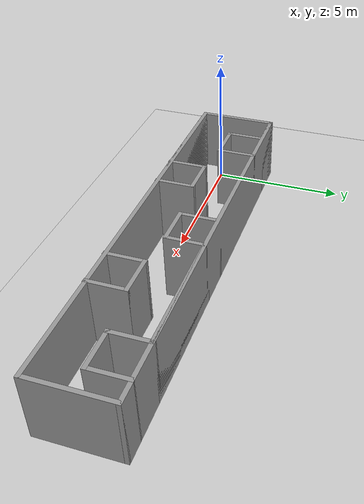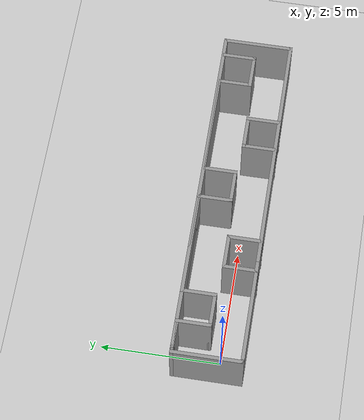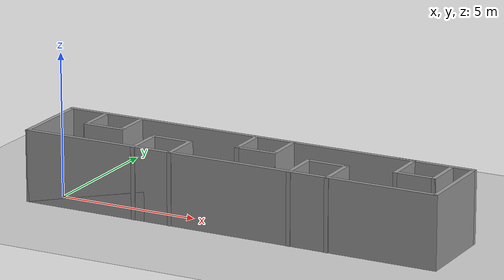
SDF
<sdf version="1.6">
 <world name="default">
  <light name="sun" type="directional">
   <pose>0 0 10 0 -0 0</pose>
   <diffuse>0.8 0.8 0.8 1</diffuse>
   <specular>0.1 0.1 0.1 1</specular>
   <attenuation>
    <range>1000</range>
    <constant>0.9</constant>
    <linear>0.01</linear>
    <quadratic>0.001</quadratic>
   </attenuation>
   <direction>-0.5 0.5 -1</direction>
  </light>
  <model name="ground_plane">
   <static>1</static>
   <link name="link">
    <collision name="collision">
     <geometry><plane><normal>0 0 1</normal><size>100 100</size></plane></geometry>
     <surface><friction><ode><mu>100</mu><mu2>50</mu2></ode></friction></surface>
    </collision>
    <visual name="visual">
     <cast_shadows>0</cast_shadows>
     <geometry><plane><normal>0 0 1</normal><size>100 100</size></plane></geometry>
     <material>
      <script><uri>file://media/materials/scripts/gazebo.material</uri><name>Gazebo/Grey</name></script>
     </material>
    </visual>
   </link>
  </model>
  <gravity>0 0 -9.8</gravity>
  <magnetic_field>6e-06 2.3e-05 -4.2e-05</magnetic_field>
  <atmosphere type="adiabatic"/>
  <physics name="default_physics" default="0" type="ode">
   <max_step_size>0.001</max_step_size>
   <real_time_factor>1</real_time_factor>
   <real_time_update_rate>1000</real_time_update_rate>
  </physics>
  <scene><ambient>0.4 0.4 0.4 1</ambient><background>0.7 0.7 0.7 1</background><shadows>1</shadows></scene>
  <spherical_coordinates>
   <surface_model>EARTH_WGS84</surface_model>
   <latitude_deg>0</latitude_deg>
   <longitude_deg>0</longitude_deg>
   <elevation>0</elevation>
   <heading_deg>0</heading_deg>
  </spherical_coordinates>
  <model name="smap_world">
   <pose>6.69008 0.481086 0 0 -0 0</pose>
   <link name="Wall_0">
    <collision name="Wall_0_Collision">
     <geometry><box><size>3 0.15 2.5</size></box></geometry>
     <pose>0 0 1.25 0 -0 0</pose>
    </collision>
    <visual name="Wall_0_Visual">
     <pose>0 0 1.25 0 -0 0</pose>
     <geometry><box><size>3 0.15 2.5</size></box></geometry>
     <material>
      <script><uri>file://media/materials/scripts/gazebo.material</uri><name>Gazebo/Grey</name></script>
      <ambient>1 1 1 1</ambient>
     </material>
    </visual>
    <pose>-7.425 0.01 0 0 0 -1.5708</pose>
   </link>
   <link name="Wall_2">
    <collision name="Wall_2_Collision">
     <geometry><box><size>15 0.15 2.5</size></box></geometry>
     <pose>0 0 1.25 0 -0 0</pose>
    </collision>
    <visual name="Wall_2_Visual">
     <pose>0 0 1.25 0 -0 0</pose>
     <geometry><box><size>15 0.15 2.5</size></box></geometry>
     <material>
      <script><uri>file://media/materials/scripts/gazebo.material</uri><name>Gazebo/Grey</name></script>
      <ambient>1 1 1 1</ambient>
     </material>
    </visual>
    <pose>0 -1.415 0 0 -0 0</pose>
   </link>
   <link name="Wall_25">
    <collision name="Wall_25_Collision">
     <geometry><box><size>15 0.15 2.5</size></box></geometry>
     <pose>0 0 1.25 0 -0 0</pose>
    </collision>
    <visual name="Wall_25_Visual">
     <pose>0 0 1.25 0 -0 0</pose>
     <geometry><box><size>15 0.15 2.5</size></box></geometry>
     <material>
      <script><uri>file://media/materials/scripts/gazebo.material</uri><name>Gazebo/Grey</name></script>
      <ambient>1 1 1 1</ambient>
     </material>
    </visual>
    <pose>0 1.435 0 0 -0 0</pose>
   </link>
   <link name="Wall_27">
    <collision name="Wall_27_Collision">
     <geometry><box><size>1.5 0.15 2.5</size></box></geometry>
     <pose>0 0 1.25 0 -0 0</pose>
    </collision>
    <visual name="Wall_27_Visual">
     <pose>0 0 1.25 0 -0 0</pose>
     <geometry><box><size>1.5 0.15 2.5</size></box></geometry>
     <material>
      <script><uri>file://media/materials/scripts/gazebo.material</uri><name>Gazebo/Grey</name></script>
      <ambient>1 1 1 1</ambient>
     </material>
    </visual>
    <pose>-5.4 0.085 0 0 -0 0</pose>
   </link>
   <link name="Wall_3">
    <collision name="Wall_3_Collision">
     <geometry><box><size>3 0.15 2.5</size></box></geometry>
     <pose>0 0 1.25 0 -0 0</pose>
    </collision>
    <visual name="Wall_3_Visual">
     <pose>0 0 1.25 0 -0 0</pose>
     <geometry><box><size>3 0.15 2.5</size></box></geometry>
     <material>
      <script><uri>file://media/materials/scripts/gazebo.material</uri><name>Gazebo/Grey</name></script>
      <ambient>1 1 1 1</ambient>
     </material>
    </visual>
    <pose>7.425 0.01 0 0 -0 1.5708</pose>
   </link>
   <link name="Wall_30">
    <collision name="Wall_30_Collision">
     <geometry><box><size>1.5 0.15 2.5</size></box></geometry>
     <pose>0 0 1.25 0 -0 0</pose>
    </collision>
    <visual name="Wall_30_Visual">
     <pose>0 0 1.25 0 -0 0</pose>
     <geometry><box><size>1.5 0.15 2.5</size></box></geometry>
     <material>
      <script><uri>file://media/materials/scripts/gazebo.material</uri><name>Gazebo/Grey</name></script>
      <ambient>1 1 1 1</ambient>
     </material>
    </visual>
    <pose>-6.75 1.435 0 0 -0 0</pose>
   </link>
   <link name="Wall_31">
    <collision name="Wall_31_Collision">
     <geometry><box><size>1.5 0.15 2.5</size></box></geometry>
     <pose>0 0 1.25 0 -0 0</pose>
    </collision>
    <visual name="Wall_31_Visual">
     <pose>0 0 1.25 0 -0 0</pose>
     <geometry><box><size>1.5 0.15 2.5</size></box></geometry>
     <material>
      <script><uri>file://media/materials/scripts/gazebo.material</uri><name>Gazebo/Grey</name></script>
      <ambient>1 1 1 1</ambient>
     </material>
    </visual>
    <pose>-6.075 0.76 0 0 0 -1.5708</pose>
   </link>
   <link name="Wall_32">
    <collision name="Wall_32_Collision">
     <geometry><box><size>1.5 0.15 2.5</size></box></geometry>
     <pose>0 0 1.25 0 -0 0</pose>
    </collision>
    <visual name="Wall_32_Visual">
     <pose>0 0 1.25 0 -0 0</pose>
     <geometry><box><size>1.5 0.15 2.5</size></box></geometry>
     <material>
      <script><uri>file://media/materials/scripts/gazebo.material</uri><name>Gazebo/Grey</name></script>
      <ambient>1 1 1 1</ambient>
     </material>
    </visual>
    <pose>-5.4 0.085 0 0 -0 0</pose>
   </link>
   <link name="Wall_33">
    <collision name="Wall_33_Collision">
     <geometry><box><size>1.5 0.15 2.5</size></box></geometry>
     <pose>0 0 1.25 0 -0 0</pose>
    </collision>
    <visual name="Wall_33_Visual">
     <pose>0 0 1.25 0 -0 0</pose>
     <geometry><box><size>1.5 0.15 2.5</size></box></geometry>
     <material>
      <script><uri>file://media/materials/scripts/gazebo.material</uri><name>Gazebo/Grey</name></script>
      <ambient>1 1 1 1</ambient>
     </material>
    </visual>
    <pose>-4.725 0.76 0 0 -0 1.5708</pose>
   </link>
   <link name="Wall_34">
    <collision name="Wall_34_Collision">
     <geometry><box><size>4.5 0.15 2.5</size></box></geometry>
     <pose>0 0 1.25 0 -0 0</pose>
    </collision>
    <visual name="Wall_34_Visual">
     <pose>0 0 1.25 0 -0 0</pose>
     <geometry><box><size>4.5 0.15 2.5</size></box></geometry>
     <material>
      <script><uri>file://media/materials/scripts/gazebo.material</uri><name>Gazebo/Grey</name></script>
      <ambient>1 1 1 1</ambient>
     </material>
    </visual>
    <pose>-2.55 1.435 0 0 -0 0</pose>
   </link>
   <link name="Wall_35">
    <collision name="Wall_35_Collision">
     <geometry><box><size>1.5 0.15 2.5</size></box></geometry>
     <pose>0 0 1.25 0 -0 0</pose>
    </collision>
    <visual name="Wall_35_Visual">
     <pose>0 0 1.25 0 -0 0</pose>
     <geometry><box><size>1.5 0.15 2.5</size></box></geometry>
     <material>
      <script><uri>file://media/materials/scripts/gazebo.material</uri><name>Gazebo/Grey</name></script>
      <ambient>1 1 1 1</ambient>
     </material>
    </visual>
    <pose>-0.375 0.76 0 0 0 -1.5708</pose>
   </link>
   <link name="Wall_36">
    <collision name="Wall_36_Collision">
     <geometry><box><size>1.5 0.15 2.5</size></box></geometry>
     <pose>0 0 1.25 0 -0 0</pose>
    </collision>
    <visual name="Wall_36_Visual">
     <pose>0 0 1.25 0 -0 0</pose>
     <geometry><box><size>1.5 0.15 2.5</size></box></geometry>
     <material>
      <script><uri>file://media/materials/scripts/gazebo.material</uri><name>Gazebo/Grey</name></script>
      <ambient>1 1 1 1</ambient>
     </material>
    </visual>
    <pose>0.3 0.085 0 0 -0 0</pose>
   </link>
   <link name="Wall_37">
    <collision name="Wall_37_Collision">
     <geometry><box><size>1.5 0.15 2.5</size></box></geometry>
     <pose>0 0 1.25 0 -0 0</pose>
    </collision>
    <visual name="Wall_37_Visual">
     <pose>0 0 1.25 0 -0 0</pose>
     <geometry><box><size>1.5 0.15 2.5</size></box></geometry>
     <material>
      <script><uri>file://media/materials/scripts/gazebo.material</uri><name>Gazebo/Grey</name></script>
      <ambient>1 1 1 1</ambient>
     </material>
    </visual>
    <pose>0.975 0.76 0 0 -0 1.5708</pose>
   </link>
   <link name="Wall_38">
    <collision name="Wall_38_Collision">
     <geometry><box><size>4.5 0.15 2.5</size></box></geometry>
     <pose>0 0 1.25 0 -0 0</pose>
    </collision>
    <visual name="Wall_38_Visual">
     <pose>0 0 1.25 0 -0 0</pose>
     <geometry><box><size>4.5 0.15 2.5</size></box></geometry>
     <material>
      <script><uri>file://media/materials/scripts/gazebo.material</uri><name>Gazebo/Grey</name></script>
      <ambient>1 1 1 1</ambient>
     </material>
    </visual>
    <pose>3.15 1.435 0 0 -0 0</pose>
   </link>
   <link name="Wall_39">
    <collision name="Wall_39_Collision">
     <geometry><box><size>1.5 0.15 2.5</size></box></geometry>
     <pose>0 0 1.25 0 -0 0</pose>
    </collision>
    <visual name="Wall_39_Visual">
     <pose>0 0 1.25 0 -0 0</pose>
     <geometry><box><size>1.5 0.15 2.5</size></box></geometry>
     <material>
      <script><uri>file://media/materials/scripts/gazebo.material</uri><name>Gazebo/Grey</name></script>
      <ambient>1 1 1 1</ambient>
     </material>
    </visual>
    <pose>5.325 0.76 0 0 0 -1.5708</pose>
   </link>
   <link name="Wall_40">
    <collision name="Wall_40_Collision">
     <geometry><box><size>1.5 0.15 2.5</size></box></geometry>
     <pose>0 0 1.25 0 -0 0</pose>
    </collision>
    <visual name="Wall_40_Visual">
     <pose>0 0 1.25 0 -0 0</pose>
     <geometry><box><size>1.5 0.15 2.5</size></box></geometry>
     <material>
      <script><uri>file://media/materials/scripts/gazebo.material</uri><name>Gazebo/Grey</name></script>
      <ambient>1 1 1 1</ambient>
     </material>
    </visual>
    <pose>6 0.085 0 0 -0 0</pose>
   </link>
   <link name="Wall_41">
    <collision name="Wall_41_Collision">
     <geometry><box><size>1.5 0.15 2.5</size></box></geometry>
     <pose>0 0 1.25 0 -0 0</pose>
    </collision>
    <visual name="Wall_41_Visual">
     <pose>0 0 1.25 0 -0 0</pose>
     <geometry><box><size>1.5 0.15 2.5</size></box></geometry>
     <material>
      <script><uri>file://media/materials/scripts/gazebo.material</uri><name>Gazebo/Grey</name></script>
      <ambient>1 1 1 1</ambient>
     </material>
    </visual>
    <pose>6.675 0.76 0 0 -0 1.5708</pose>
   </link>
   <link name="Wall_43">
    <collision name="Wall_43_Collision">
     <geometry><box><size>4.5 0.15 2.5</size></box></geometry>
     <pose>0 0 1.25 0 -0 0</pose>
    </collision>
    <visual name="Wall_43_Visual">
     <pose>0 0 1.25 0 -0 0</pose>
     <geometry><box><size>4.5 0.15 2.5</size></box></geometry>
     <material>
      <script><uri>file://media/materials/scripts/gazebo.material</uri><name>Gazebo/Grey</name></script>
      <ambient>1 1 1 1</ambient>
     </material>
    </visual>
    <pose>-5.25 -1.415 0 0 -0 0</pose>
   </link>
   <link name="Wall_53">
    <collision name="Wall_53_Collision">
     <geometry><box><size>1.5 0.15 2.5</size></box></geometry>
     <pose>0 0 1.25 0 -0 0</pose>
    </collision>
    <visual name="Wall_53_Visual">
     <pose>0 0 1.25 0 -0 0</pose>
     <geometry><box><size>1.5 0.15 2.5</size></box></geometry>
     <material>
      <script><uri>file://media/materials/scripts/gazebo.material</uri><name>Gazebo/Grey</name></script>
      <ambient>1 1 1 1</ambient>
     </material>
    </visual>
    <pose>-3.405 -0.76 0 0 -0 1.5708</pose>
   </link>
   <link name="Wall_54">
    <collision name="Wall_54_Collision">
     <geometry><box><size>1.5 0.15 2.5</size></box></geometry>
     <pose>0 0 1.25 0 -0 0</pose>
    </collision>
    <visual name="Wall_54_Visual">
     <pose>0 0 1.25 0 -0 0</pose>
     <geometry><box><size>1.5 0.15 2.5</size></box></geometry>
     <material>
      <script><uri>file://media/materials/scripts/gazebo.material</uri><name>Gazebo/Grey</name></script>
      <ambient>1 1 1 1</ambient>
     </material>
    </visual>
    <pose>-2.73 -0.085 0 0 -0 0</pose>
   </link>
   <link name="Wall_55">
    <collision name="Wall_55_Collision">
     <geometry><box><size>1.5 0.15 2.5</size></box></geometry>
     <pose>0 0 1.25 0 -0 0</pose>
    </collision>
    <visual name="Wall_55_Visual">
     <pose>0 0 1.25 0 -0 0</pose>
     <geometry><box><size>1.5 0.15 2.5</size></box></geometry>
     <material>
      <script><uri>file://media/materials/scripts/gazebo.material</uri><name>Gazebo/Grey</name></script>
      <ambient>1 1 1 1</ambient>
     </material>
    </visual>
    <pose>-2.055 -0.76 0 0 0 -1.5708</pose>
   </link>
   <link name="Wall_58">
    <collision name="Wall_58_Collision">
     <geometry><box><size>1.5 0.15 2.5</size></box></geometry>
     <pose>0 0 1.25 0 -0 0</pose>
    </collision>
    <visual name="Wall_58_Visual">
     <pose>0 0 1.25 0 -0 0</pose>
     <geometry><box><size>1.5 0.15 2.5</size></box></geometry>
     <material>
      <script><uri>file://media/materials/scripts/gazebo.material</uri><name>Gazebo/Grey</name></script>
      <ambient>1 1 1 1</ambient>
     </material>
    </visual>
    <pose>2.295 -0.76 0 0 -0 1.5708</pose>
   </link>
   <link name="Wall_59">
    <collision name="Wall_59_Collision">
     <geometry><box><size>1.5 0.15 2.5</size></box></geometry>
     <pose>0 0 1.25 0 -0 0</pose>
    </collision>
    <visual name="Wall_59_Visual">
     <pose>0 0 1.25 0 -0 0</pose>
     <geometry><box><size>1.5 0.15 2.5</size></box></geometry>
     <material>
      <script><uri>file://media/materials/scripts/gazebo.material</uri><name>Gazebo/Grey</name></script>
      <ambient>1 1 1 1</ambient>
     </material>
    </visual>
    <pose>2.97 -0.085 0 0 -0 0</pose>
   </link>
   <link name="Wall_60">
    <collision name="Wall_60_Collision">
     <geometry><box><size>1.5 0.15 2.5</size></box></geometry>
     <pose>0 0 1.25 0 -0 0</pose>
    </collision>
    <visual name="Wall_60_Visual">
     <pose>0 0 1.25 0 -0 0</pose>
     <geometry><box><size>1.5 0.15 2.5</size></box></geometry>
     <material>
      <script><uri>file://media/materials/scripts/gazebo.material</uri><name>Gazebo/Grey</name></script>
      <ambient>1 1 1 1</ambient>
     </material>
    </visual>
    <pose>3.645 -0.76 0 0 0 -1.5708</pose>
   </link>
   <static>1</static>
  </model>
 </world>
</sdf>
